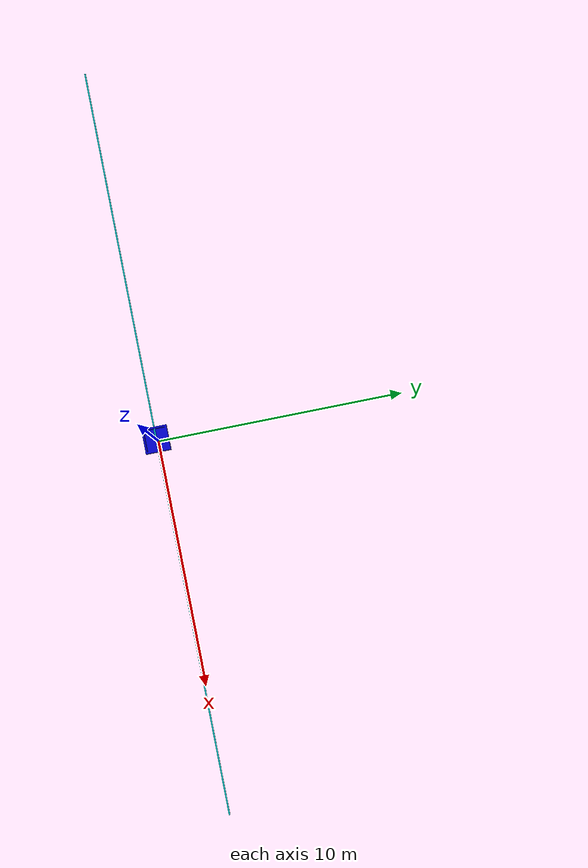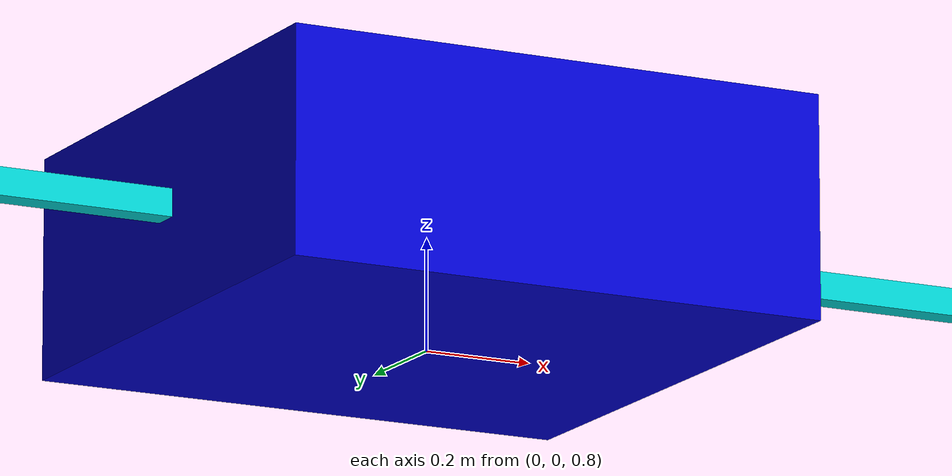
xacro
<?xml version="1.0"?>
<robot name="cart" xmlns:xacro="http://www.ros.org/wiki/xacro">

<!-- ****************************************************** Cart Robot ***************************************************************  -->
<!-- Muthanna Alwahash                                                                                                                  -->
<!-- March 2022                                                                                                                         -->

<!-- ****************************************************** Parameters ***************************************************************  -->

    <xacro:property name="pkg_path"     value="$(find bots)"                />
    <xacro:property name="mesh_path"    value="${pkg_path}/meshes/cart/"    />
    <xacro:property name="config_path"  value="${pkg_path}/config/"         />

    <xacro:property name="name_space"   value="cart" />
    <xacro:property name="prefix"       value=""      />

<!-- ****************************************************** Includes *****************************************************************  -->

    <xacro:include filename="${pkg_path}/xacro/common_rviz_materials.xacro" />  <!--  RVIZ Colors  -->
    <xacro:include filename="${pkg_path}/xacro/urdf_cart.xacro" />              <!--  Robot URDF   -->
    <xacro:include filename="${pkg_path}/gazebo/gz_cart_position.xacro" />      <!--  Gazebo Sim   -->
    <xacro:include filename="${pkg_path}/r2c/r2c_cart_position.xacro" />        <!--  ROS2_Control -->

<!-- ****************************************************** END **********************************************************************  -->

</robot>

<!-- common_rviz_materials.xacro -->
<!-- ****************************************************** RVIZ Colors **************************************************************  -->
<!-- Muthanna Alwahash                                                                                                                  -->
<!-- March 2022                                                                                                                         -->

<robot>

  <material name="red">
    <color rgba="1.0 0.0 0.0 1.0"/>
  </material>

  <material name="green">
    <color rgba="0.0 1.0 0.0 1.0"/>
  </material>

  <material name="blue">
    <color rgba="0.0 0.0 1.0 1.0"/>
  </material>

  <material name="black">
    <color rgba="0.3 0.3 0.3 1.0"/>
  </material>

  <material name="white">
    <color rgba="1.0 1.0 1.0 1.0"/>
  </material>

  <material name="grey">
    <color rgba="0.2 0.2 0.2 1.0"/>
  </material>

  <material name="orange">
    <color rgba="${255/255} ${108/255} ${10/255} 1.0"/>
  </material>

  <material name="brown">
    <color rgba="${222/255} ${207/255} ${195/255} 1.0"/>
  </material>

  <material name="yellow">
    <color rgba="1.0 1.0 0.0 1.0"/>
  </material>

</robot>

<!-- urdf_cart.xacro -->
<robot name="cart" xmlns:xacro="http://ros.org/wiki/xacro">

<!-- ****************************************************** World Link *************************************************************** -->

  <link name="world"/>

<!-- ****************************************************** slideBar Link ************************************************************ -->

  <link name="slideBar">
    <visual>
      <geometry>
        <box size="30 0.05 0.05"/>
      </geometry>
      <origin xyz="0 0 0"/>
      <material name="green">
        <color rgba="0 0.8 .8 1"/>
      </material>
    </visual>
    <inertial>
      <mass value="100"/>
      <inertia ixx="1.0" ixy="0.0" ixz="0.0" iyy="1.0" iyz="0.0" izz="1.0"/>
    </inertial>
  </link>

<!-- ****************************************************** cart Link **************************************************************** -->

  <link name="cart">
    <visual>
      <geometry>
        <mesh filename="${mesh_path}cart.stl" scale="1 1 1"/>
      </geometry>
      <origin xyz="0 0 0"/>
      <material name="blue">
        <color rgba="0 0 .8 1"/>
      </material>
    </visual>
    <inertial>
      <mass value="1"/>
      <inertia ixx="1.0" ixy="0.0" ixz="0.0" iyy="1.0" iyz="0.0" izz="1.0"/>
    </inertial>
  </link>

<!-- ****************************************************** world to slideBar Joint ************************************************** -->

  <joint name="world_to_base" type="fixed">
    <origin rpy="0 0 0" xyz="0 0 1"/>
    <parent link="world"/>
    <child link="slideBar"/>
  </joint>

<!-- ****************************************************** slideBar to cart Joint *************************************************** -->

  <joint name="slider_to_cart" type="prismatic">
    <axis xyz="1 0 0"/>
    <origin xyz="0.0 0.0 0.0"/>
    <parent link="slideBar"/>
    <child link="cart"/>
    <limit effort="1000.0" lower="-15" upper="15" velocity="30"/>
    <dynamics damping="0.0" friction="0.0"/>
  </joint>

<!-- ****************************************************** End ********************************************************************** -->

</robot>
